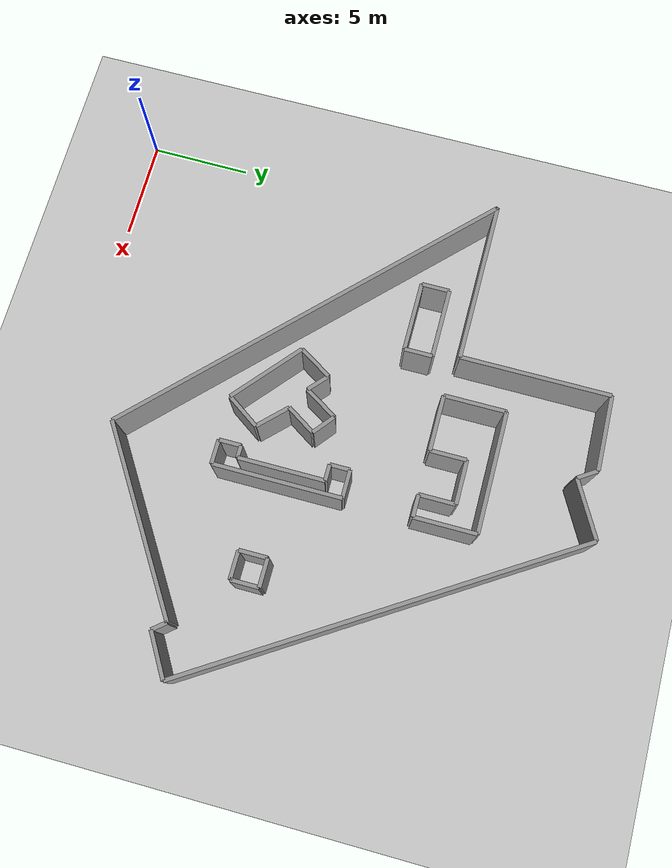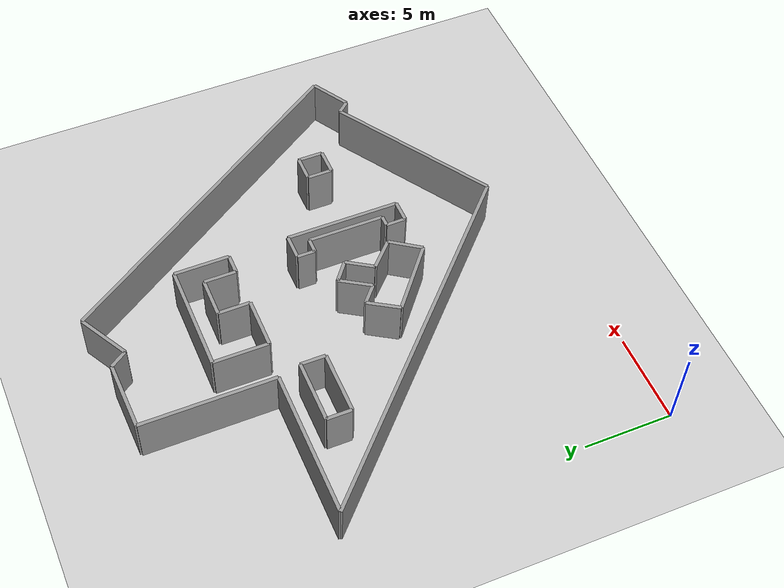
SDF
<?xml version="1.0" ?>

    <!-- this file is auto generated using pedsim_gazebo_plugin pkg -->
    <sdf version="1.5">
      <world name="default">

      <!-- Ground Plane -->

      <include>
        <uri>model://ground_plane</uri>
      </include>

      <include>
        <uri>model://sun</uri>
      </include>

     <model name='grey_wall_1'>
      <static>1</static>
      <link name='link'>

	  <pose frame=''>19.8 5.9  1.4 0 0 0.571337479834</pose>

        <collision name='collision'>
          <geometry>
            <box>

	     <size> 9.98599018626 .2  2.8 </size>

      	   </box>
          </geometry>
          <max_contacts>10</max_contacts>
          <surface>
            <contact>
              <ode/>
            </contact>
            <bounce/>
            <friction>
              <torsional>
                <ode/>
              </torsional>
              <ode/>
            </friction>
          </surface>
        </collision>
        <visual name='visual'>
          <cast_shadows>0</cast_shadows>
          <geometry>
            <box>

	     <size> 9.98599018626 .2  2.8 </size>

      	   </box>
       </geometry>
          <material>
            <script>
              <uri>model://grey_wall/materials/scripts</uri>
              <uri>model://grey_wall/materials/textures</uri>
              <name>vrc/grey_wall</name>
            </script>
          </material>
        </visual>
        <self_collide>0</self_collide>
        <enable_wind>0</enable_wind>
        <kinematic>0</kinematic>
      </link>
    </model>

     <model name='grey_wall_2'>
      <static>1</static>
      <link name='link'>

	  <pose frame=''>24.25 8.3  1.4 0 0 -0.876058050598</pose>

        <collision name='collision'>
          <geometry>
            <box>

	     <size> 0.781024967591 .2  2.8 </size>

      	   </box>
          </geometry>
          <max_contacts>10</max_contacts>
          <surface>
            <contact>
              <ode/>
            </contact>
            <bounce/>
            <friction>
              <torsional>
                <ode/>
              </torsional>
              <ode/>
            </friction>
          </surface>
        </collision>
        <visual name='visual'>
          <cast_shadows>0</cast_shadows>
          <geometry>
            <box>

	     <size> 0.781024967591 .2  2.8 </size>

      	   </box>
       </geometry>
          <material>
            <script>
              <uri>model://grey_wall/materials/scripts</uri>
              <uri>model://grey_wall/materials/textures</uri>
              <name>vrc/grey_wall</name>
            </script>
          </material>
        </visual>
        <self_collide>0</self_collide>
        <enable_wind>0</enable_wind>
        <kinematic>0</kinematic>
      </link>
    </model>

     <model name='grey_wall_3'>
      <static>1</static>
      <link name='link'>

	  <pose frame=''>25.5 8.6  1.4 0 0 0.540419500271</pose>

        <collision name='collision'>
          <geometry>
            <box>

	     <size> 2.33238075794 .2  2.8 </size>

      	   </box>
          </geometry>
          <max_contacts>10</max_contacts>
          <surface>
            <contact>
              <ode/>
            </contact>
            <bounce/>
            <friction>
              <torsional>
                <ode/>
              </torsional>
              <ode/>
            </friction>
          </surface>
        </collision>
        <visual name='visual'>
          <cast_shadows>0</cast_shadows>
          <geometry>
            <box>

	     <size> 2.33238075794 .2  2.8 </size>

      	   </box>
       </geometry>
          <material>
            <script>
              <uri>model://grey_wall/materials/scripts</uri>
              <uri>model://grey_wall/materials/textures</uri>
              <name>vrc/grey_wall</name>
            </script>
          </material>
        </visual>
        <self_collide>0</self_collide>
        <enable_wind>0</enable_wind>
        <kinematic>0</kinematic>
      </link>
    </model>

     <model name='grey_wall_4'>
      <static>1</static>
      <link name='link'>

	  <pose frame=''>20.9 17.95  1.4 0 0 -1.00148313569</pose>

        <collision name='collision'>
          <geometry>
            <box>

	     <size> 20.7771509115 .2  2.8 </size>

      	   </box>
          </geometry>
          <max_contacts>10</max_contacts>
          <surface>
            <contact>
              <ode/>
            </contact>
            <bounce/>
            <friction>
              <torsional>
                <ode/>
              </torsional>
              <ode/>
            </friction>
          </surface>
        </collision>
        <visual name='visual'>
          <cast_shadows>0</cast_shadows>
          <geometry>
            <box>

	     <size> 20.7771509115 .2  2.8 </size>

      	   </box>
       </geometry>
          <material>
            <script>
              <uri>model://grey_wall/materials/scripts</uri>
              <uri>model://grey_wall/materials/textures</uri>
              <name>vrc/grey_wall</name>
            </script>
          </material>
        </visual>
        <self_collide>0</self_collide>
        <enable_wind>0</enable_wind>
        <kinematic>0</kinematic>
      </link>
    </model>

     <model name='grey_wall_5'>
      <static>1</static>
      <link name='link'>

	  <pose frame=''>13.95 25.95  1.4 0 0 0.507098504392</pose>

        <collision name='collision'>
          <geometry>
            <box>

	     <size> 3.0886890423 .2  2.8 </size>

      	   </box>
          </geometry>
          <max_contacts>10</max_contacts>
          <surface>
            <contact>
              <ode/>
            </contact>
            <bounce/>
            <friction>
              <torsional>
                <ode/>
              </torsional>
              <ode/>
            </friction>
          </surface>
        </collision>
        <visual name='visual'>
          <cast_shadows>0</cast_shadows>
          <geometry>
            <box>

	     <size> 3.0886890423 .2  2.8 </size>

      	   </box>
       </geometry>
          <material>
            <script>
              <uri>model://grey_wall/materials/scripts</uri>
              <uri>model://grey_wall/materials/textures</uri>
              <name>vrc/grey_wall</name>
            </script>
          </material>
        </visual>
        <self_collide>0</self_collide>
        <enable_wind>0</enable_wind>
        <kinematic>0</kinematic>
      </link>
    </model>

     <model name='grey_wall_6'>
      <static>1</static>
      <link name='link'>

	  <pose frame=''>12.3 25.65  1.4 0 0 -0.982793723247</pose>

        <collision name='collision'>
          <geometry>
            <box>

	     <size> 1.08166538264 .2  2.8 </size>

      	   </box>
          </geometry>
          <max_contacts>10</max_contacts>
          <surface>
            <contact>
              <ode/>
            </contact>
            <bounce/>
            <friction>
              <torsional>
                <ode/>
              </torsional>
              <ode/>
            </friction>
          </surface>
        </collision>
        <visual name='visual'>
          <cast_shadows>0</cast_shadows>
          <geometry>
            <box>

	     <size> 1.08166538264 .2  2.8 </size>

      	   </box>
       </geometry>
          <material>
            <script>
              <uri>model://grey_wall/materials/scripts</uri>
              <uri>model://grey_wall/materials/textures</uri>
              <name>vrc/grey_wall</name>
            </script>
          </material>
        </visual>
        <self_collide>0</self_collide>
        <enable_wind>0</enable_wind>
        <kinematic>0</kinematic>
      </link>
    </model>

     <model name='grey_wall_7'>
      <static>1</static>
      <link name='link'>

	  <pose frame=''>10.1 26.05  1.4 0 0 0.0263097172529</pose>

        <collision name='collision'>
          <geometry>
            <box>

	     <size> 3.80131556175 .2  2.8 </size>

      	   </box>
          </geometry>
          <max_contacts>10</max_contacts>
          <surface>
            <contact>
              <ode/>
            </contact>
            <bounce/>
            <friction>
              <torsional>
                <ode/>
              </torsional>
              <ode/>
            </friction>
          </surface>
        </collision>
        <visual name='visual'>
          <cast_shadows>0</cast_shadows>
          <geometry>
            <box>

	     <size> 3.80131556175 .2  2.8 </size>

      	   </box>
       </geometry>
          <material>
            <script>
              <uri>model://grey_wall/materials/scripts</uri>
              <uri>model://grey_wall/materials/textures</uri>
              <name>vrc/grey_wall</name>
            </script>
          </material>
        </visual>
        <self_collide>0</self_collide>
        <enable_wind>0</enable_wind>
        <kinematic>0</kinematic>
      </link>
    </model>

     <model name='grey_wall_8'>
      <static>1</static>
      <link name='link'>

	  <pose frame=''>8.2 22.25  1.4 0 0 1.57</pose>

        <collision name='collision'>
          <geometry>
            <box>

	     <size> 7.5 .2  2.8 </size>

      	   </box>
          </geometry>
          <max_contacts>10</max_contacts>
          <surface>
            <contact>
              <ode/>
            </contact>
            <bounce/>
            <friction>
              <torsional>
                <ode/>
              </torsional>
              <ode/>
            </friction>
          </surface>
        </collision>
        <visual name='visual'>
          <cast_shadows>0</cast_shadows>
          <geometry>
            <box>

	     <size> 7.5 .2  2.8 </size>

      	   </box>
       </geometry>
          <material>
            <script>
              <uri>model://grey_wall/materials/scripts</uri>
              <uri>model://grey_wall/materials/textures</uri>
              <name>vrc/grey_wall</name>
            </script>
          </material>
        </visual>
        <self_collide>0</self_collide>
        <enable_wind>0</enable_wind>
        <kinematic>0</kinematic>
      </link>
    </model>

     <model name='grey_wall_9'>
      <static>1</static>
      <link name='link'>

	  <pose frame=''>4.1 18.5  1.4 0 0 0.0</pose>

        <collision name='collision'>
          <geometry>
            <box>

	     <size> 8.2 .2  2.8 </size>

      	   </box>
          </geometry>
          <max_contacts>10</max_contacts>
          <surface>
            <contact>
              <ode/>
            </contact>
            <bounce/>
            <friction>
              <torsional>
                <ode/>
              </torsional>
              <ode/>
            </friction>
          </surface>
        </collision>
        <visual name='visual'>
          <cast_shadows>0</cast_shadows>
          <geometry>
            <box>

	     <size> 8.2 .2  2.8 </size>

      	   </box>
       </geometry>
          <material>
            <script>
              <uri>model://grey_wall/materials/scripts</uri>
              <uri>model://grey_wall/materials/textures</uri>
              <name>vrc/grey_wall</name>
            </script>
          </material>
        </visual>
        <self_collide>0</self_collide>
        <enable_wind>0</enable_wind>
        <kinematic>0</kinematic>
      </link>
    </model>

     <model name='grey_wall_10'>
      <static>1</static>
      <link name='link'>

	  <pose frame=''>7.8 10.85  1.4 0 0 -0.775689730563</pose>

        <collision name='collision'>
          <geometry>
            <box>

	     <size> 21.8506292816 .2  2.8 </size>

      	   </box>
          </geometry>
          <max_contacts>10</max_contacts>
          <surface>
            <contact>
              <ode/>
            </contact>
            <bounce/>
            <friction>
              <torsional>
                <ode/>
              </torsional>
              <ode/>
            </friction>
          </surface>
        </collision>
        <visual name='visual'>
          <cast_shadows>0</cast_shadows>
          <geometry>
            <box>

	     <size> 21.8506292816 .2  2.8 </size>

      	   </box>
       </geometry>
          <material>
            <script>
              <uri>model://grey_wall/materials/scripts</uri>
              <uri>model://grey_wall/materials/textures</uri>
              <name>vrc/grey_wall</name>
            </script>
          </material>
        </visual>
        <self_collide>0</self_collide>
        <enable_wind>0</enable_wind>
        <kinematic>0</kinematic>
      </link>
    </model>

     <model name='grey_wall_11'>
      <static>1</static>
      <link name='link'>

	  <pose frame=''>13.55 9.1  1.4 0 0 0.96850898066</pose>

        <collision name='collision'>
          <geometry>
            <box>

	     <size> 1.94164878389 .2  2.8 </size>

      	   </box>
          </geometry>
          <max_contacts>10</max_contacts>
          <surface>
            <contact>
              <ode/>
            </contact>
            <bounce/>
            <friction>
              <torsional>
                <ode/>
              </torsional>
              <ode/>
            </friction>
          </surface>
        </collision>
        <visual name='visual'>
          <cast_shadows>0</cast_shadows>
          <geometry>
            <box>

	     <size> 1.94164878389 .2  2.8 </size>

      	   </box>
       </geometry>
          <material>
            <script>
              <uri>model://grey_wall/materials/scripts</uri>
              <uri>model://grey_wall/materials/textures</uri>
              <name>vrc/grey_wall</name>
            </script>
          </material>
        </visual>
        <self_collide>0</self_collide>
        <enable_wind>0</enable_wind>
        <kinematic>0</kinematic>
      </link>
    </model>

     <model name='grey_wall_12'>
      <static>1</static>
      <link name='link'>

	  <pose frame=''>13.45 10.55  1.4 0 0 -0.785398163397</pose>

        <collision name='collision'>
          <geometry>
            <box>

	     <size> 1.83847763109 .2  2.8 </size>

      	   </box>
          </geometry>
          <max_contacts>10</max_contacts>
          <surface>
            <contact>
              <ode/>
            </contact>
            <bounce/>
            <friction>
              <torsional>
                <ode/>
              </torsional>
              <ode/>
            </friction>
          </surface>
        </collision>
        <visual name='visual'>
          <cast_shadows>0</cast_shadows>
          <geometry>
            <box>

	     <size> 1.83847763109 .2  2.8 </size>

      	   </box>
       </geometry>
          <material>
            <script>
              <uri>model://grey_wall/materials/scripts</uri>
              <uri>model://grey_wall/materials/textures</uri>
              <name>vrc/grey_wall</name>
            </script>
          </material>
        </visual>
        <self_collide>0</self_collide>
        <enable_wind>0</enable_wind>
        <kinematic>0</kinematic>
      </link>
    </model>

     <model name='grey_wall_13'>
      <static>1</static>
      <link name='link'>

	  <pose frame=''>13.25 11.9  1.4 0 0 0.999458846961</pose>

        <collision name='collision'>
          <geometry>
            <box>

	     <size> 1.66433169771 .2  2.8 </size>

      	   </box>
          </geometry>
          <max_contacts>10</max_contacts>
          <surface>
            <contact>
              <ode/>
            </contact>
            <bounce/>
            <friction>
              <torsional>
                <ode/>
              </torsional>
              <ode/>
            </friction>
          </surface>
        </collision>
        <visual name='visual'>
          <cast_shadows>0</cast_shadows>
          <geometry>
            <box>

	     <size> 1.66433169771 .2  2.8 </size>

      	   </box>
       </geometry>
          <material>
            <script>
              <uri>model://grey_wall/materials/scripts</uri>
              <uri>model://grey_wall/materials/textures</uri>
              <name>vrc/grey_wall</name>
            </script>
          </material>
        </visual>
        <self_collide>0</self_collide>
        <enable_wind>0</enable_wind>
        <kinematic>0</kinematic>
      </link>
    </model>

     <model name='grey_wall_14'>
      <static>1</static>
      <link name='link'>

	  <pose frame=''>13.2 13.0  1.4 0 0 -0.674740942224</pose>

        <collision name='collision'>
          <geometry>
            <box>

	     <size> 1.28062484749 .2  2.8 </size>

      	   </box>
          </geometry>
          <max_contacts>10</max_contacts>
          <surface>
            <contact>
              <ode/>
            </contact>
            <bounce/>
            <friction>
              <torsional>
                <ode/>
              </torsional>
              <ode/>
            </friction>
          </surface>
        </collision>
        <visual name='visual'>
          <cast_shadows>0</cast_shadows>
          <geometry>
            <box>

	     <size> 1.28062484749 .2  2.8 </size>

      	   </box>
       </geometry>
          <material>
            <script>
              <uri>model://grey_wall/materials/scripts</uri>
              <uri>model://grey_wall/materials/textures</uri>
              <name>vrc/grey_wall</name>
            </script>
          </material>
        </visual>
        <self_collide>0</self_collide>
        <enable_wind>0</enable_wind>
        <kinematic>0</kinematic>
      </link>
    </model>

     <model name='grey_wall_15'>
      <static>1</static>
      <link name='link'>

	  <pose frame=''>12.2 12.6  1.4 0 0 1.01219701145</pose>

        <collision name='collision'>
          <geometry>
            <box>

	     <size> 1.88679622641 .2  2.8 </size>

      	   </box>
          </geometry>
          <max_contacts>10</max_contacts>
          <surface>
            <contact>
              <ode/>
            </contact>
            <bounce/>
            <friction>
              <torsional>
                <ode/>
              </torsional>
              <ode/>
            </friction>
          </surface>
        </collision>
        <visual name='visual'>
          <cast_shadows>0</cast_shadows>
          <geometry>
            <box>

	     <size> 1.88679622641 .2  2.8 </size>

      	   </box>
       </geometry>
          <material>
            <script>
              <uri>model://grey_wall/materials/scripts</uri>
              <uri>model://grey_wall/materials/textures</uri>
              <name>vrc/grey_wall</name>
            </script>
          </material>
        </visual>
        <self_collide>0</self_collide>
        <enable_wind>0</enable_wind>
        <kinematic>0</kinematic>
      </link>
    </model>

     <model name='grey_wall_16'>
      <static>1</static>
      <link name='link'>

	  <pose frame=''>11.25 12.2  1.4 0 0 -0.726642340682</pose>

        <collision name='collision'>
          <geometry>
            <box>

	     <size> 1.20415945788 .2  2.8 </size>

      	   </box>
          </geometry>
          <max_contacts>10</max_contacts>
          <surface>
            <contact>
              <ode/>
            </contact>
            <bounce/>
            <friction>
              <torsional>
                <ode/>
              </torsional>
              <ode/>
            </friction>
          </surface>
        </collision>
        <visual name='visual'>
          <cast_shadows>0</cast_shadows>
          <geometry>
            <box>

	     <size> 1.20415945788 .2  2.8 </size>

      	   </box>
       </geometry>
          <material>
            <script>
              <uri>model://grey_wall/materials/scripts</uri>
              <uri>model://grey_wall/materials/textures</uri>
              <name>vrc/grey_wall</name>
            </script>
          </material>
        </visual>
        <self_collide>0</self_collide>
        <enable_wind>0</enable_wind>
        <kinematic>0</kinematic>
      </link>
    </model>

     <model name='grey_wall_17'>
      <static>1</static>
      <link name='link'>

	  <pose frame=''>10.3 11.8  1.4 0 0 1.01219701145</pose>

        <collision name='collision'>
          <geometry>
            <box>

	     <size> 1.88679622641 .2  2.8 </size>

      	   </box>
          </geometry>
          <max_contacts>10</max_contacts>
          <surface>
            <contact>
              <ode/>
            </contact>
            <bounce/>
            <friction>
              <torsional>
                <ode/>
              </torsional>
              <ode/>
            </friction>
          </surface>
        </collision>
        <visual name='visual'>
          <cast_shadows>0</cast_shadows>
          <geometry>
            <box>

	     <size> 1.88679622641 .2  2.8 </size>

      	   </box>
       </geometry>
          <material>
            <script>
              <uri>model://grey_wall/materials/scripts</uri>
              <uri>model://grey_wall/materials/textures</uri>
              <name>vrc/grey_wall</name>
            </script>
          </material>
        </visual>
        <self_collide>0</self_collide>
        <enable_wind>0</enable_wind>
        <kinematic>0</kinematic>
      </link>
    </model>

     <model name='grey_wall_18'>
      <static>1</static>
      <link name='link'>

	  <pose frame=''>11.4 9.65  1.4 0 0 -0.700854407884</pose>

        <collision name='collision'>
          <geometry>
            <box>

	     <size> 4.18688428309 .2  2.8 </size>

      	   </box>
          </geometry>
          <max_contacts>10</max_contacts>
          <surface>
            <contact>
              <ode/>
            </contact>
            <bounce/>
            <friction>
              <torsional>
                <ode/>
              </torsional>
              <ode/>
            </friction>
          </surface>
        </collision>
        <visual name='visual'>
          <cast_shadows>0</cast_shadows>
          <geometry>
            <box>

	     <size> 4.18688428309 .2  2.8 </size>

      	   </box>
       </geometry>
          <material>
            <script>
              <uri>model://grey_wall/materials/scripts</uri>
              <uri>model://grey_wall/materials/textures</uri>
              <name>vrc/grey_wall</name>
            </script>
          </material>
        </visual>
        <self_collide>0</self_collide>
        <enable_wind>0</enable_wind>
        <kinematic>0</kinematic>
      </link>
    </model>

     <model name='grey_wall_19'>
      <static>1</static>
      <link name='link'>

	  <pose frame=''>15.8 8.4  1.4 0 0 0.0</pose>

        <collision name='collision'>
          <geometry>
            <box>

	     <size> 1.2 .2  2.8 </size>

      	   </box>
          </geometry>
          <max_contacts>10</max_contacts>
          <surface>
            <contact>
              <ode/>
            </contact>
            <bounce/>
            <friction>
              <torsional>
                <ode/>
              </torsional>
              <ode/>
            </friction>
          </surface>
        </collision>
        <visual name='visual'>
          <cast_shadows>0</cast_shadows>
          <geometry>
            <box>

	     <size> 1.2 .2  2.8 </size>

      	   </box>
       </geometry>
          <material>
            <script>
              <uri>model://grey_wall/materials/scripts</uri>
              <uri>model://grey_wall/materials/textures</uri>
              <name>vrc/grey_wall</name>
            </script>
          </material>
        </visual>
        <self_collide>0</self_collide>
        <enable_wind>0</enable_wind>
        <kinematic>0</kinematic>
      </link>
    </model>

     <model name='grey_wall_20'>
      <static>1</static>
      <link name='link'>

	  <pose frame=''>16.4 11.6  1.4 0 0 1.57</pose>

        <collision name='collision'>
          <geometry>
            <box>

	     <size> 6.4 .2  2.8 </size>

      	   </box>
          </geometry>
          <max_contacts>10</max_contacts>
          <surface>
            <contact>
              <ode/>
            </contact>
            <bounce/>
            <friction>
              <torsional>
                <ode/>
              </torsional>
              <ode/>
            </friction>
          </surface>
        </collision>
        <visual name='visual'>
          <cast_shadows>0</cast_shadows>
          <geometry>
            <box>

	     <size> 6.4 .2  2.8 </size>

      	   </box>
       </geometry>
          <material>
            <script>
              <uri>model://grey_wall/materials/scripts</uri>
              <uri>model://grey_wall/materials/textures</uri>
              <name>vrc/grey_wall</name>
            </script>
          </material>
        </visual>
        <self_collide>0</self_collide>
        <enable_wind>0</enable_wind>
        <kinematic>0</kinematic>
      </link>
    </model>

     <model name='grey_wall_21'>
      <static>1</static>
      <link name='link'>

	  <pose frame=''>15.7 14.8  1.4 0 0 -0.0</pose>

        <collision name='collision'>
          <geometry>
            <box>

	     <size> 1.4 .2  2.8 </size>

      	   </box>
          </geometry>
          <max_contacts>10</max_contacts>
          <surface>
            <contact>
              <ode/>
            </contact>
            <bounce/>
            <friction>
              <torsional>
                <ode/>
              </torsional>
              <ode/>
            </friction>
          </surface>
        </collision>
        <visual name='visual'>
          <cast_shadows>0</cast_shadows>
          <geometry>
            <box>

	     <size> 1.4 .2  2.8 </size>

      	   </box>
       </geometry>
          <material>
            <script>
              <uri>model://grey_wall/materials/scripts</uri>
              <uri>model://grey_wall/materials/textures</uri>
              <name>vrc/grey_wall</name>
            </script>
          </material>
        </visual>
        <self_collide>0</self_collide>
        <enable_wind>0</enable_wind>
        <kinematic>0</kinematic>
      </link>
    </model>

     <model name='grey_wall_22'>
      <static>1</static>
      <link name='link'>

	  <pose frame=''>15.0 14.3  1.4 0 0 1.57</pose>

        <collision name='collision'>
          <geometry>
            <box>

	     <size> 1.0 .2  2.8 </size>

      	   </box>
          </geometry>
          <max_contacts>10</max_contacts>
          <surface>
            <contact>
              <ode/>
            </contact>
            <bounce/>
            <friction>
              <torsional>
                <ode/>
              </torsional>
              <ode/>
            </friction>
          </surface>
        </collision>
        <visual name='visual'>
          <cast_shadows>0</cast_shadows>
          <geometry>
            <box>

	     <size> 1.0 .2  2.8 </size>

      	   </box>
       </geometry>
          <material>
            <script>
              <uri>model://grey_wall/materials/scripts</uri>
              <uri>model://grey_wall/materials/textures</uri>
              <name>vrc/grey_wall</name>
            </script>
          </material>
        </visual>
        <self_collide>0</self_collide>
        <enable_wind>0</enable_wind>
        <kinematic>0</kinematic>
      </link>
    </model>

     <model name='grey_wall_23'>
      <static>1</static>
      <link name='link'>

	  <pose frame=''>15.4 13.8  1.4 0 0 0.0</pose>

        <collision name='collision'>
          <geometry>
            <box>

	     <size> 0.8 .2  2.8 </size>

      	   </box>
          </geometry>
          <max_contacts>10</max_contacts>
          <surface>
            <contact>
              <ode/>
            </contact>
            <bounce/>
            <friction>
              <torsional>
                <ode/>
              </torsional>
              <ode/>
            </friction>
          </surface>
        </collision>
        <visual name='visual'>
          <cast_shadows>0</cast_shadows>
          <geometry>
            <box>

	     <size> 0.8 .2  2.8 </size>

      	   </box>
       </geometry>
          <material>
            <script>
              <uri>model://grey_wall/materials/scripts</uri>
              <uri>model://grey_wall/materials/textures</uri>
              <name>vrc/grey_wall</name>
            </script>
          </material>
        </visual>
        <self_collide>0</self_collide>
        <enable_wind>0</enable_wind>
        <kinematic>0</kinematic>
      </link>
    </model>

     <model name='grey_wall_24'>
      <static>1</static>
      <link name='link'>

	  <pose frame=''>15.8 11.65  1.4 0 0 1.57</pose>

        <collision name='collision'>
          <geometry>
            <box>

	     <size> 4.3 .2  2.8 </size>

      	   </box>
          </geometry>
          <max_contacts>10</max_contacts>
          <surface>
            <contact>
              <ode/>
            </contact>
            <bounce/>
            <friction>
              <torsional>
                <ode/>
              </torsional>
              <ode/>
            </friction>
          </surface>
        </collision>
        <visual name='visual'>
          <cast_shadows>0</cast_shadows>
          <geometry>
            <box>

	     <size> 4.3 .2  2.8 </size>

      	   </box>
       </geometry>
          <material>
            <script>
              <uri>model://grey_wall/materials/scripts</uri>
              <uri>model://grey_wall/materials/textures</uri>
              <name>vrc/grey_wall</name>
            </script>
          </material>
        </visual>
        <self_collide>0</self_collide>
        <enable_wind>0</enable_wind>
        <kinematic>0</kinematic>
      </link>
    </model>

     <model name='grey_wall_25'>
      <static>1</static>
      <link name='link'>

	  <pose frame=''>15.5 9.5  1.4 0 0 -0.0</pose>

        <collision name='collision'>
          <geometry>
            <box>

	     <size> 0.6 .2  2.8 </size>

      	   </box>
          </geometry>
          <max_contacts>10</max_contacts>
          <surface>
            <contact>
              <ode/>
            </contact>
            <bounce/>
            <friction>
              <torsional>
                <ode/>
              </torsional>
              <ode/>
            </friction>
          </surface>
        </collision>
        <visual name='visual'>
          <cast_shadows>0</cast_shadows>
          <geometry>
            <box>

	     <size> 0.6 .2  2.8 </size>

      	   </box>
       </geometry>
          <material>
            <script>
              <uri>model://grey_wall/materials/scripts</uri>
              <uri>model://grey_wall/materials/textures</uri>
              <name>vrc/grey_wall</name>
            </script>
          </material>
        </visual>
        <self_collide>0</self_collide>
        <enable_wind>0</enable_wind>
        <kinematic>0</kinematic>
      </link>
    </model>

     <model name='grey_wall_26'>
      <static>1</static>
      <link name='link'>

	  <pose frame=''>15.2 8.95  1.4 0 0 1.57</pose>

        <collision name='collision'>
          <geometry>
            <box>

	     <size> 1.1 .2  2.8 </size>

      	   </box>
          </geometry>
          <max_contacts>10</max_contacts>
          <surface>
            <contact>
              <ode/>
            </contact>
            <bounce/>
            <friction>
              <torsional>
                <ode/>
              </torsional>
              <ode/>
            </friction>
          </surface>
        </collision>
        <visual name='visual'>
          <cast_shadows>0</cast_shadows>
          <geometry>
            <box>

	     <size> 1.1 .2  2.8 </size>

      	   </box>
       </geometry>
          <material>
            <script>
              <uri>model://grey_wall/materials/scripts</uri>
              <uri>model://grey_wall/materials/textures</uri>
              <name>vrc/grey_wall</name>
            </script>
          </material>
        </visual>
        <self_collide>0</self_collide>
        <enable_wind>0</enable_wind>
        <kinematic>0</kinematic>
      </link>
    </model>

     <model name='grey_wall_27'>
      <static>1</static>
      <link name='link'>

	  <pose frame=''>15.8 8.4  1.4 0 0 0.0</pose>

        <collision name='collision'>
          <geometry>
            <box>

	     <size> 1.2 .2  2.8 </size>

      	   </box>
          </geometry>
          <max_contacts>10</max_contacts>
          <surface>
            <contact>
              <ode/>
            </contact>
            <bounce/>
            <friction>
              <torsional>
                <ode/>
              </torsional>
              <ode/>
            </friction>
          </surface>
        </collision>
        <visual name='visual'>
          <cast_shadows>0</cast_shadows>
          <geometry>
            <box>

	     <size> 1.2 .2  2.8 </size>

      	   </box>
       </geometry>
          <material>
            <script>
              <uri>model://grey_wall/materials/scripts</uri>
              <uri>model://grey_wall/materials/textures</uri>
              <name>vrc/grey_wall</name>
            </script>
          </material>
        </visual>
        <self_collide>0</self_collide>
        <enable_wind>0</enable_wind>
        <kinematic>0</kinematic>
      </link>
    </model>

     <model name='grey_wall_28'>
      <static>1</static>
      <link name='link'>

	  <pose frame=''>21.4 11.5  1.4 0 0 1.57</pose>

        <collision name='collision'>
          <geometry>
            <box>

	     <size> 1.4 .2  2.8 </size>

      	   </box>
          </geometry>
          <max_contacts>10</max_contacts>
          <surface>
            <contact>
              <ode/>
            </contact>
            <bounce/>
            <friction>
              <torsional>
                <ode/>
              </torsional>
              <ode/>
            </friction>
          </surface>
        </collision>
        <visual name='visual'>
          <cast_shadows>0</cast_shadows>
          <geometry>
            <box>

	     <size> 1.4 .2  2.8 </size>

      	   </box>
       </geometry>
          <material>
            <script>
              <uri>model://grey_wall/materials/scripts</uri>
              <uri>model://grey_wall/materials/textures</uri>
              <name>vrc/grey_wall</name>
            </script>
          </material>
        </visual>
        <self_collide>0</self_collide>
        <enable_wind>0</enable_wind>
        <kinematic>0</kinematic>
      </link>
    </model>

     <model name='grey_wall_29'>
      <static>1</static>
      <link name='link'>

	  <pose frame=''>20.7 12.2  1.4 0 0 0.0</pose>

        <collision name='collision'>
          <geometry>
            <box>

	     <size> 1.4 .2  2.8 </size>

      	   </box>
          </geometry>
          <max_contacts>10</max_contacts>
          <surface>
            <contact>
              <ode/>
            </contact>
            <bounce/>
            <friction>
              <torsional>
                <ode/>
              </torsional>
              <ode/>
            </friction>
          </surface>
        </collision>
        <visual name='visual'>
          <cast_shadows>0</cast_shadows>
          <geometry>
            <box>

	     <size> 1.4 .2  2.8 </size>

      	   </box>
       </geometry>
          <material>
            <script>
              <uri>model://grey_wall/materials/scripts</uri>
              <uri>model://grey_wall/materials/textures</uri>
              <name>vrc/grey_wall</name>
            </script>
          </material>
        </visual>
        <self_collide>0</self_collide>
        <enable_wind>0</enable_wind>
        <kinematic>0</kinematic>
      </link>
    </model>

     <model name='grey_wall_30'>
      <static>1</static>
      <link name='link'>

	  <pose frame=''>20.0 11.5  1.4 0 0 1.57</pose>

        <collision name='collision'>
          <geometry>
            <box>

	     <size> 1.4 .2  2.8 </size>

      	   </box>
          </geometry>
          <max_contacts>10</max_contacts>
          <surface>
            <contact>
              <ode/>
            </contact>
            <bounce/>
            <friction>
              <torsional>
                <ode/>
              </torsional>
              <ode/>
            </friction>
          </surface>
        </collision>
        <visual name='visual'>
          <cast_shadows>0</cast_shadows>
          <geometry>
            <box>

	     <size> 1.4 .2  2.8 </size>

      	   </box>
       </geometry>
          <material>
            <script>
              <uri>model://grey_wall/materials/scripts</uri>
              <uri>model://grey_wall/materials/textures</uri>
              <name>vrc/grey_wall</name>
            </script>
          </material>
        </visual>
        <self_collide>0</self_collide>
        <enable_wind>0</enable_wind>
        <kinematic>0</kinematic>
      </link>
    </model>

     <model name='grey_wall_31'>
      <static>1</static>
      <link name='link'>

	  <pose frame=''>20.7 10.8  1.4 0 0 -0.0</pose>

        <collision name='collision'>
          <geometry>
            <box>

	     <size> 1.4 .2  2.8 </size>

      	   </box>
          </geometry>
          <max_contacts>10</max_contacts>
          <surface>
            <contact>
              <ode/>
            </contact>
            <bounce/>
            <friction>
              <torsional>
                <ode/>
              </torsional>
              <ode/>
            </friction>
          </surface>
        </collision>
        <visual name='visual'>
          <cast_shadows>0</cast_shadows>
          <geometry>
            <box>

	     <size> 1.4 .2  2.8 </size>

      	   </box>
       </geometry>
          <material>
            <script>
              <uri>model://grey_wall/materials/scripts</uri>
              <uri>model://grey_wall/materials/textures</uri>
              <name>vrc/grey_wall</name>
            </script>
          </material>
        </visual>
        <self_collide>0</self_collide>
        <enable_wind>0</enable_wind>
        <kinematic>0</kinematic>
      </link>
    </model>

     <model name='grey_wall_32'>
      <static>1</static>
      <link name='link'>

	  <pose frame=''>8.5 16.5  1.4 0 0 1.57</pose>

        <collision name='collision'>
          <geometry>
            <box>

	     <size> 1.4 .2  2.8 </size>

      	   </box>
          </geometry>
          <max_contacts>10</max_contacts>
          <surface>
            <contact>
              <ode/>
            </contact>
            <bounce/>
            <friction>
              <torsional>
                <ode/>
              </torsional>
              <ode/>
            </friction>
          </surface>
        </collision>
        <visual name='visual'>
          <cast_shadows>0</cast_shadows>
          <geometry>
            <box>

	     <size> 1.4 .2  2.8 </size>

      	   </box>
       </geometry>
          <material>
            <script>
              <uri>model://grey_wall/materials/scripts</uri>
              <uri>model://grey_wall/materials/textures</uri>
              <name>vrc/grey_wall</name>
            </script>
          </material>
        </visual>
        <self_collide>0</self_collide>
        <enable_wind>0</enable_wind>
        <kinematic>0</kinematic>
      </link>
    </model>

     <model name='grey_wall_33'>
      <static>1</static>
      <link name='link'>

	  <pose frame=''>6.75 17.2  1.4 0 0 0.0</pose>

        <collision name='collision'>
          <geometry>
            <box>

	     <size> 3.5 .2  2.8 </size>

      	   </box>
          </geometry>
          <max_contacts>10</max_contacts>
          <surface>
            <contact>
              <ode/>
            </contact>
            <bounce/>
            <friction>
              <torsional>
                <ode/>
              </torsional>
              <ode/>
            </friction>
          </surface>
        </collision>
        <visual name='visual'>
          <cast_shadows>0</cast_shadows>
          <geometry>
            <box>

	     <size> 3.5 .2  2.8 </size>

      	   </box>
       </geometry>
          <material>
            <script>
              <uri>model://grey_wall/materials/scripts</uri>
              <uri>model://grey_wall/materials/textures</uri>
              <name>vrc/grey_wall</name>
            </script>
          </material>
        </visual>
        <self_collide>0</self_collide>
        <enable_wind>0</enable_wind>
        <kinematic>0</kinematic>
      </link>
    </model>

     <model name='grey_wall_34'>
      <static>1</static>
      <link name='link'>

	  <pose frame=''>5.0 16.5  1.4 0 0 1.57</pose>

        <collision name='collision'>
          <geometry>
            <box>

	     <size> 1.4 .2  2.8 </size>

      	   </box>
          </geometry>
          <max_contacts>10</max_contacts>
          <surface>
            <contact>
              <ode/>
            </contact>
            <bounce/>
            <friction>
              <torsional>
                <ode/>
              </torsional>
              <ode/>
            </friction>
          </surface>
        </collision>
        <visual name='visual'>
          <cast_shadows>0</cast_shadows>
          <geometry>
            <box>

	     <size> 1.4 .2  2.8 </size>

      	   </box>
       </geometry>
          <material>
            <script>
              <uri>model://grey_wall/materials/scripts</uri>
              <uri>model://grey_wall/materials/textures</uri>
              <name>vrc/grey_wall</name>
            </script>
          </material>
        </visual>
        <self_collide>0</self_collide>
        <enable_wind>0</enable_wind>
        <kinematic>0</kinematic>
      </link>
    </model>

     <model name='grey_wall_35'>
      <static>1</static>
      <link name='link'>

	  <pose frame=''>6.75 15.8  1.4 0 0 -0.0</pose>

        <collision name='collision'>
          <geometry>
            <box>

	     <size> 3.5 .2  2.8 </size>

      	   </box>
          </geometry>
          <max_contacts>10</max_contacts>
          <surface>
            <contact>
              <ode/>
            </contact>
            <bounce/>
            <friction>
              <torsional>
                <ode/>
              </torsional>
              <ode/>
            </friction>
          </surface>
        </collision>
        <visual name='visual'>
          <cast_shadows>0</cast_shadows>
          <geometry>
            <box>

	     <size> 3.5 .2  2.8 </size>

      	   </box>
       </geometry>
          <material>
            <script>
              <uri>model://grey_wall/materials/scripts</uri>
              <uri>model://grey_wall/materials/textures</uri>
              <name>vrc/grey_wall</name>
            </script>
          </material>
        </visual>
        <self_collide>0</self_collide>
        <enable_wind>0</enable_wind>
        <kinematic>0</kinematic>
      </link>
    </model>

     <model name='grey_wall_36'>
      <static>1</static>
      <link name='link'>

	  <pose frame=''>15.85 18.2  1.4 0 0 0.0</pose>

        <collision name='collision'>
          <geometry>
            <box>

	     <size> 1.1 .2  2.8 </size>

      	   </box>
          </geometry>
          <max_contacts>10</max_contacts>
          <surface>
            <contact>
              <ode/>
            </contact>
            <bounce/>
            <friction>
              <torsional>
                <ode/>
              </torsional>
              <ode/>
            </friction>
          </surface>
        </collision>
        <visual name='visual'>
          <cast_shadows>0</cast_shadows>
          <geometry>
            <box>

	     <size> 1.1 .2  2.8 </size>

      	   </box>
       </geometry>
          <material>
            <script>
              <uri>model://grey_wall/materials/scripts</uri>
              <uri>model://grey_wall/materials/textures</uri>
              <name>vrc/grey_wall</name>
            </script>
          </material>
        </visual>
        <self_collide>0</self_collide>
        <enable_wind>0</enable_wind>
        <kinematic>0</kinematic>
      </link>
    </model>

     <model name='grey_wall_37'>
      <static>1</static>
      <link name='link'>

	  <pose frame=''>16.4 19.75  1.4 0 0 1.57</pose>

        <collision name='collision'>
          <geometry>
            <box>

	     <size> 3.1 .2  2.8 </size>

      	   </box>
          </geometry>
          <max_contacts>10</max_contacts>
          <surface>
            <contact>
              <ode/>
            </contact>
            <bounce/>
            <friction>
              <torsional>
                <ode/>
              </torsional>
              <ode/>
            </friction>
          </surface>
        </collision>
        <visual name='visual'>
          <cast_shadows>0</cast_shadows>
          <geometry>
            <box>

	     <size> 3.1 .2  2.8 </size>

      	   </box>
       </geometry>
          <material>
            <script>
              <uri>model://grey_wall/materials/scripts</uri>
              <uri>model://grey_wall/materials/textures</uri>
              <name>vrc/grey_wall</name>
            </script>
          </material>
        </visual>
        <self_collide>0</self_collide>
        <enable_wind>0</enable_wind>
        <kinematic>0</kinematic>
      </link>
    </model>

     <model name='grey_wall_38'>
      <static>1</static>
      <link name='link'>

	  <pose frame=''>13.35 21.3  1.4 0 0 -0.0</pose>

        <collision name='collision'>
          <geometry>
            <box>

	     <size> 6.1 .2  2.8 </size>

      	   </box>
          </geometry>
          <max_contacts>10</max_contacts>
          <surface>
            <contact>
              <ode/>
            </contact>
            <bounce/>
            <friction>
              <torsional>
                <ode/>
              </torsional>
              <ode/>
            </friction>
          </surface>
        </collision>
        <visual name='visual'>
          <cast_shadows>0</cast_shadows>
          <geometry>
            <box>

	     <size> 6.1 .2  2.8 </size>

      	   </box>
       </geometry>
          <material>
            <script>
              <uri>model://grey_wall/materials/scripts</uri>
              <uri>model://grey_wall/materials/textures</uri>
              <name>vrc/grey_wall</name>
            </script>
          </material>
        </visual>
        <self_collide>0</self_collide>
        <enable_wind>0</enable_wind>
        <kinematic>0</kinematic>
      </link>
    </model>

     <model name='grey_wall_39'>
      <static>1</static>
      <link name='link'>

	  <pose frame=''>10.3 19.75  1.4 0 0 1.57</pose>

        <collision name='collision'>
          <geometry>
            <box>

	     <size> 3.1 .2  2.8 </size>

      	   </box>
          </geometry>
          <max_contacts>10</max_contacts>
          <surface>
            <contact>
              <ode/>
            </contact>
            <bounce/>
            <friction>
              <torsional>
                <ode/>
              </torsional>
              <ode/>
            </friction>
          </surface>
        </collision>
        <visual name='visual'>
          <cast_shadows>0</cast_shadows>
          <geometry>
            <box>

	     <size> 3.1 .2  2.8 </size>

      	   </box>
       </geometry>
          <material>
            <script>
              <uri>model://grey_wall/materials/scripts</uri>
              <uri>model://grey_wall/materials/textures</uri>
              <name>vrc/grey_wall</name>
            </script>
          </material>
        </visual>
        <self_collide>0</self_collide>
        <enable_wind>0</enable_wind>
        <kinematic>0</kinematic>
      </link>
    </model>

     <model name='grey_wall_40'>
      <static>1</static>
      <link name='link'>

	  <pose frame=''>11.7 18.2  1.4 0 0 0.0</pose>

        <collision name='collision'>
          <geometry>
            <box>

	     <size> 2.8 .2  2.8 </size>

      	   </box>
          </geometry>
          <max_contacts>10</max_contacts>
          <surface>
            <contact>
              <ode/>
            </contact>
            <bounce/>
            <friction>
              <torsional>
                <ode/>
              </torsional>
              <ode/>
            </friction>
          </surface>
        </collision>
        <visual name='visual'>
          <cast_shadows>0</cast_shadows>
          <geometry>
            <box>

	     <size> 2.8 .2  2.8 </size>

      	   </box>
       </geometry>
          <material>
            <script>
              <uri>model://grey_wall/materials/scripts</uri>
              <uri>model://grey_wall/materials/textures</uri>
              <name>vrc/grey_wall</name>
            </script>
          </material>
        </visual>
        <self_collide>0</self_collide>
        <enable_wind>0</enable_wind>
        <kinematic>0</kinematic>
      </link>
    </model>

     <model name='grey_wall_41'>
      <static>1</static>
      <link name='link'>

	  <pose frame=''>13.1 19.1  1.4 0 0 1.57</pose>

        <collision name='collision'>
          <geometry>
            <box>

	     <size> 1.8 .2  2.8 </size>

      	   </box>
          </geometry>
          <max_contacts>10</max_contacts>
          <surface>
            <contact>
              <ode/>
            </contact>
            <bounce/>
            <friction>
              <torsional>
                <ode/>
              </torsional>
              <ode/>
            </friction>
          </surface>
        </collision>
        <visual name='visual'>
          <cast_shadows>0</cast_shadows>
          <geometry>
            <box>

	     <size> 1.8 .2  2.8 </size>

      	   </box>
       </geometry>
          <material>
            <script>
              <uri>model://grey_wall/materials/scripts</uri>
              <uri>model://grey_wall/materials/textures</uri>
              <name>vrc/grey_wall</name>
            </script>
          </material>
        </visual>
        <self_collide>0</self_collide>
        <enable_wind>0</enable_wind>
        <kinematic>0</kinematic>
      </link>
    </model>

     <model name='grey_wall_42'>
      <static>1</static>
      <link name='link'>

	  <pose frame=''>14.2 20.0  1.4 0 0 0.0</pose>

        <collision name='collision'>
          <geometry>
            <box>

	     <size> 2.2 .2  2.8 </size>

      	   </box>
          </geometry>
          <max_contacts>10</max_contacts>
          <surface>
            <contact>
              <ode/>
            </contact>
            <bounce/>
            <friction>
              <torsional>
                <ode/>
              </torsional>
              <ode/>
            </friction>
          </surface>
        </collision>
        <visual name='visual'>
          <cast_shadows>0</cast_shadows>
          <geometry>
            <box>

	     <size> 2.2 .2  2.8 </size>

      	   </box>
       </geometry>
          <material>
            <script>
              <uri>model://grey_wall/materials/scripts</uri>
              <uri>model://grey_wall/materials/textures</uri>
              <name>vrc/grey_wall</name>
            </script>
          </material>
        </visual>
        <self_collide>0</self_collide>
        <enable_wind>0</enable_wind>
        <kinematic>0</kinematic>
      </link>
    </model>

     <model name='grey_wall_43'>
      <static>1</static>
      <link name='link'>

	  <pose frame=''>15.3 19.1  1.4 0 0 1.57</pose>

        <collision name='collision'>
          <geometry>
            <box>

	     <size> 1.8 .2  2.8 </size>

      	   </box>
          </geometry>
          <max_contacts>10</max_contacts>
          <surface>
            <contact>
              <ode/>
            </contact>
            <bounce/>
            <friction>
              <torsional>
                <ode/>
              </torsional>
              <ode/>
            </friction>
          </surface>
        </collision>
        <visual name='visual'>
          <cast_shadows>0</cast_shadows>
          <geometry>
            <box>

	     <size> 1.8 .2  2.8 </size>

      	   </box>
       </geometry>
          <material>
            <script>
              <uri>model://grey_wall/materials/scripts</uri>
              <uri>model://grey_wall/materials/textures</uri>
              <name>vrc/grey_wall</name>
            </script>
          </material>
        </visual>
        <self_collide>0</self_collide>
        <enable_wind>0</enable_wind>
        <kinematic>0</kinematic>
      </link>
    </model>

            <plugin name="ActorPosesPlugin" filename="libActorPosesPlugin.so">
        </plugin>

      </world>
    </sdf>
